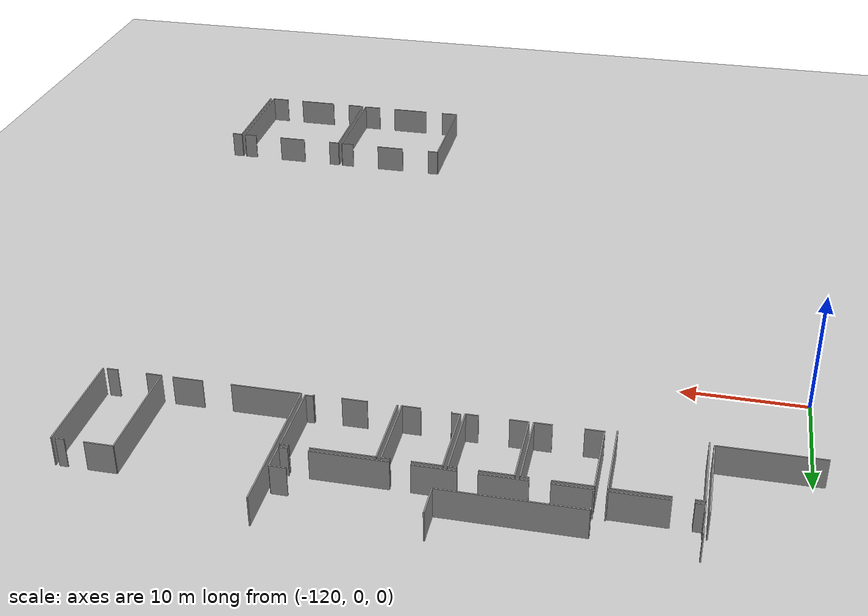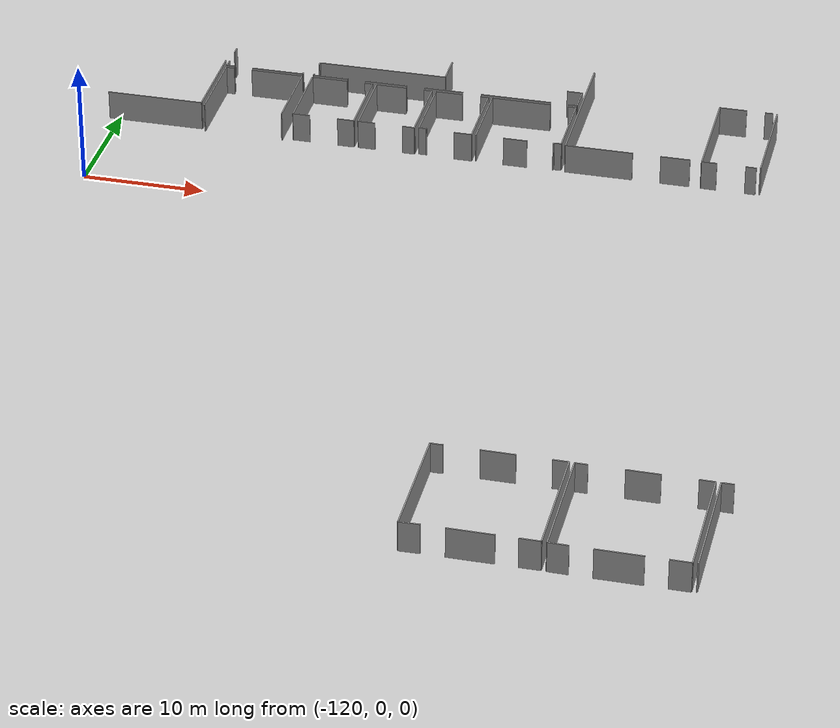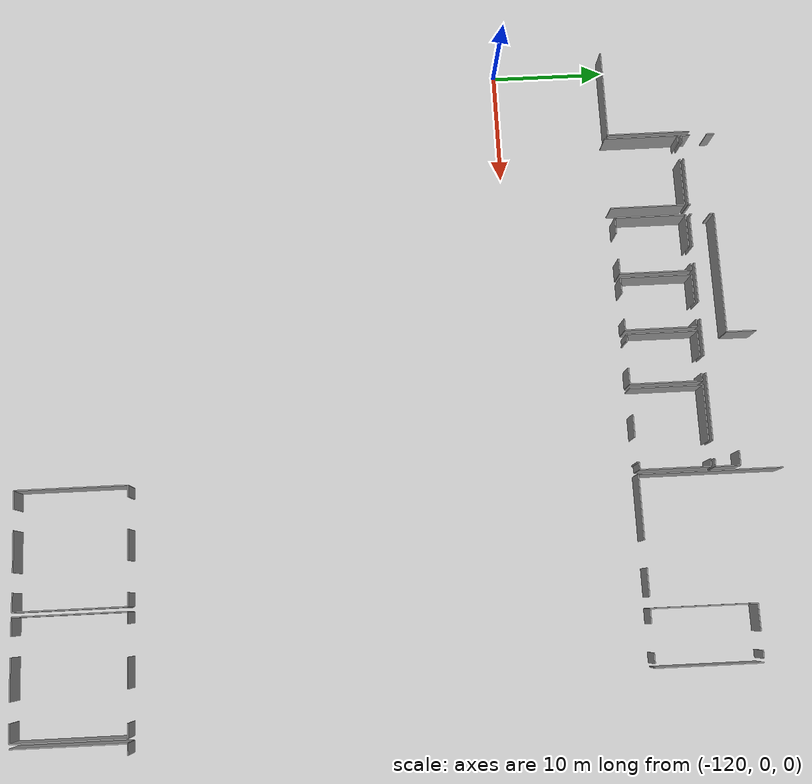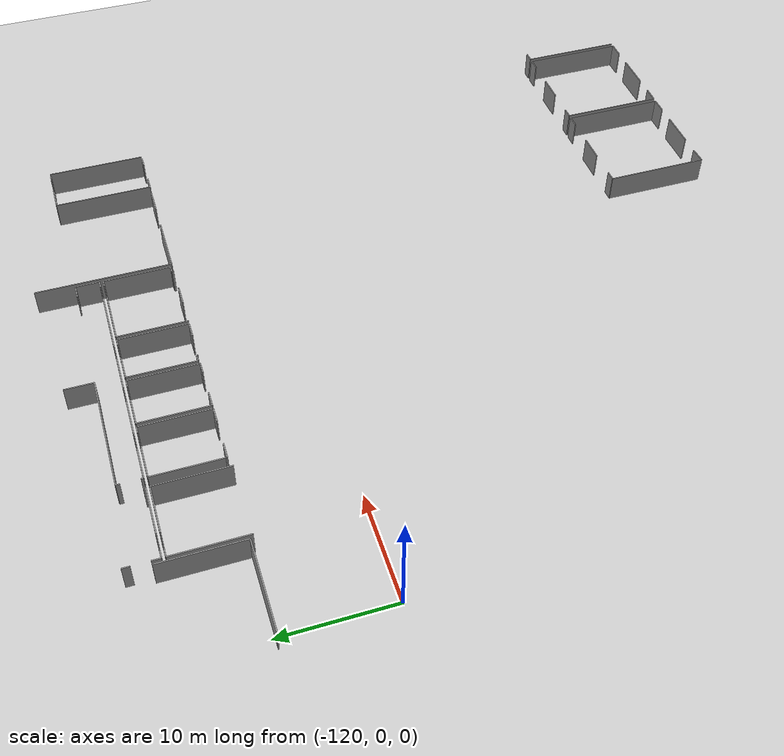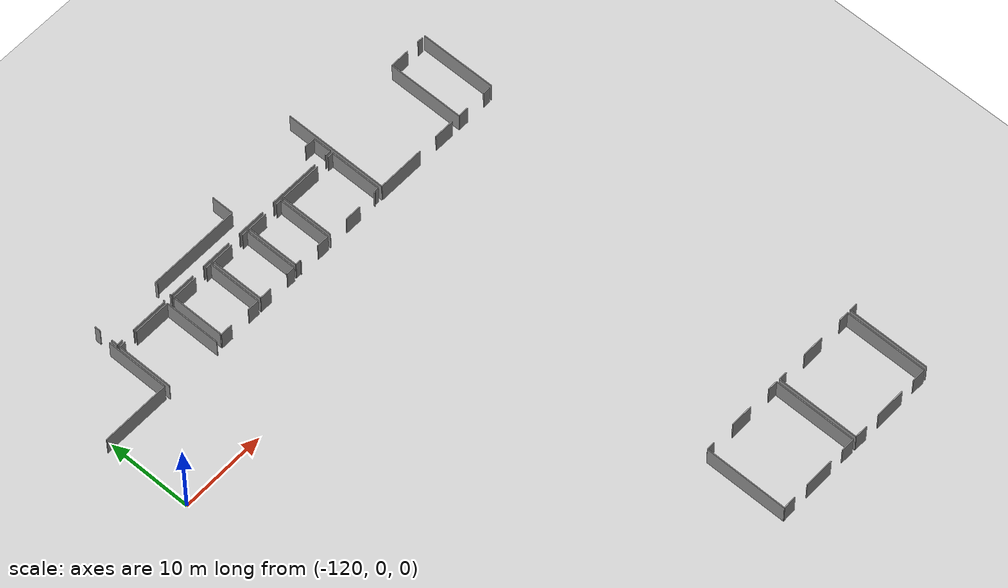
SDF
<sdf version="1.6">
 <world name="default">
  <model name="ground_plane">
   <static>1</static>
   <link name="link">
    <collision name="collision">
     <geometry><plane><normal>0 0 1</normal><size>100 100</size></plane></geometry>
     <surface><friction><ode><mu>100</mu><mu2>50</mu2></ode></friction></surface>
    </collision>
    <visual name="visual">
     <cast_shadows>0</cast_shadows>
     <geometry><plane><normal>0 0 1</normal><size>100 100</size></plane></geometry>
     <material>
      <script><uri>file://media/materials/scripts/gazebo.material</uri><name>Gazebo/Grey</name></script>
     </material>
    </visual>
   </link>
  </model>
  <model name="0510045922_A-40">
   <static>1</static>
   <link name="Wall_533">
    <collision name="Wall_533_Collision">
     <geometry><box><size>7.36938425367 0.1 2.5</size></box></geometry>
     <pose>3.68469212683 0 1.25 0 0 0</pose>
    </collision>
    <visual name="Wall_533_Visual">
     <pose>3.68469212683 0 1.25 0 0 0</pose>
     <geometry><box><size>7.36938425367 0.1 2.5</size></box></geometry>
     <material>
      <script><uri>file://media/materials/scripts/gazebo.material</uri><name>Gazebo/Grey</name></script>
      <ambient>1 1 1 1</ambient>
     </material>
    </visual>
    <pose>21.2833958188 -84.1925144564 0 0 0 -1.57079632679</pose>
   </link>
   <link name="Wall_534">
    <collision name="Wall_534_Collision">
     <geometry><box><size>8.01728410752 0.1 2.5</size></box></geometry>
     <pose>4.00864205376 0 1.25 0 0 0</pose>
    </collision>
    <visual name="Wall_534_Visual">
     <pose>4.00864205376 0 1.25 0 0 0</pose>
     <geometry><box><size>8.01728410752 0.1 2.5</size></box></geometry>
     <material>
      <script><uri>file://media/materials/scripts/gazebo.material</uri><name>Gazebo/Grey</name></script>
      <ambient>1 1 1 1</ambient>
     </material>
    </visual>
    <pose>21.2833958188 -91.56189871 0 0 0 3.14159265359</pose>
   </link>
   <link name="Wall_536">
    <collision name="Wall_536_Collision">
     <geometry><box><size>6.59541208617 0.1 2.5</size></box></geometry>
     <pose>3.29770604308 0 1.25 0 0 0</pose>
    </collision>
    <visual name="Wall_536_Visual">
     <pose>3.29770604308 0 1.25 0 0 0</pose>
     <geometry><box><size>6.59541208617 0.1 2.5</size></box></geometry>
     <material>
      <script><uri>file://media/materials/scripts/gazebo.material</uri><name>Gazebo/Grey</name></script>
      <ambient>1 1 1 1</ambient>
     </material>
    </visual>
    <pose>28.2310986846 -91.8765711381 0 0 0 1.57079632679</pose>
   </link>
   <link name="Wall_537">
    <collision name="Wall_537_Collision">
     <geometry><box><size>4.36449132617 0.1 2.5</size></box></geometry>
     <pose>2.18224566309 0 1.25 0 0 0</pose>
    </collision>
    <visual name="Wall_537_Visual">
     <pose>2.18224566309 0 1.25 0 0 0</pose>
     <geometry><box><size>4.36449132617 0.1 2.5</size></box></geometry>
     <material>
      <script><uri>file://media/materials/scripts/gazebo.material</uri><name>Gazebo/Grey</name></script>
      <ambient>1 1 1 1</ambient>
     </material>
    </visual>
    <pose>28.2310986846 -85.2811590519 0 0 0 3.14159265359</pose>
   </link>
   <link name="Wall_538">
    <collision name="Wall_538_Collision">
     <geometry><box><size>0.707885874055 0.1 2.5</size></box></geometry>
     <pose>0.353942937027 0 1.25 0 0 0</pose>
    </collision>
    <visual name="Wall_538_Visual">
     <pose>0.353942937027 0 1.25 0 0 0</pose>
     <geometry><box><size>0.707885874055 0.1 2.5</size></box></geometry>
     <material>
      <script><uri>file://media/materials/scripts/gazebo.material</uri><name>Gazebo/Grey</name></script>
      <ambient>1 1 1 1</ambient>
     </material>
    </visual>
    <pose>22.3356929529 -85.2811590519 0 0 0 3.14159265359</pose>
   </link>
   <link name="Wall_539">
    <collision name="Wall_539_Collision">
     <geometry><box><size>6.59541953577 0.1 2.5</size></box></geometry>
     <pose>3.29770976788 0 1.25 0 0 0</pose>
    </collision>
    <visual name="Wall_539_Visual">
     <pose>3.29770976788 0 1.25 0 0 0</pose>
     <geometry><box><size>6.59541953577 0.1 2.5</size></box></geometry>
     <material>
      <script><uri>file://media/materials/scripts/gazebo.material</uri><name>Gazebo/Grey</name></script>
      <ambient>1 1 1 1</ambient>
     </material>
    </visual>
    <pose>21.6278070789 -85.2811590519 0 0 0 -1.56929332191</pose>
   </link>
   <link name="Wall_554">
    <collision name="Wall_554_Collision">
     <geometry><box><size>0.769651140624 0.1 2.5</size></box></geometry>
     <pose>0.384825570312 0 1.25 0 0 0</pose>
    </collision>
    <visual name="Wall_554_Visual">
     <pose>0.384825570312 0 1.25 0 0 0</pose>
     <geometry><box><size>0.769651140624 0.1 2.5</size></box></geometry>
     <material>
      <script><uri>file://media/materials/scripts/gazebo.material</uri><name>Gazebo/Grey</name></script>
      <ambient>1 1 1 1</ambient>
     </material>
    </visual>
    <pose>21.6184024909 -84.9486941603 0 0 0 1.57079632679</pose>
   </link>
   <link name="Wall_555">
    <collision name="Wall_555_Collision">
     <geometry><box><size>0.682976424986 0.1 2.5</size></box></geometry>
     <pose>0.341488212493 0 1.25 0 0 0</pose>
    </collision>
    <visual name="Wall_555_Visual">
     <pose>0.341488212493 0 1.25 0 0 0</pose>
     <geometry><box><size>0.682976424986 0.1 2.5</size></box></geometry>
     <material>
      <script><uri>file://media/materials/scripts/gazebo.material</uri><name>Gazebo/Grey</name></script>
      <ambient>1 1 1 1</ambient>
     </material>
    </visual>
    <pose>21.6184024909 -82.6407574506 0 0 0 1.57079632679</pose>
   </link>
   <link name="Wall_559">
    <collision name="Wall_559_Collision">
     <geometry><box><size>0.188345936328 0.1 2.5</size></box></geometry>
     <pose>0.0941729681642 0 1.25 0 0 0</pose>
    </collision>
    <visual name="Wall_559_Visual">
     <pose>0.0941729681642 0 1.25 0 0 0</pose>
     <geometry><box><size>0.188345936328 0.1 2.5</size></box></geometry>
     <material>
      <script><uri>file://media/materials/scripts/gazebo.material</uri><name>Gazebo/Grey</name></script>
      <ambient>1 1 1 1</ambient>
     </material>
    </visual>
    <pose>28.2168647137 -84.7626358264 0 0 0 -1.57079632679</pose>
   </link>
   <link name="Wall_560">
    <collision name="Wall_560_Collision">
     <geometry><box><size>4.36754146279 0.1 2.5</size></box></geometry>
     <pose>2.1837707314 0 1.25 0 0 0</pose>
    </collision>
    <visual name="Wall_560_Visual">
     <pose>2.1837707314 0 1.25 0 0 0</pose>
     <geometry><box><size>4.36754146279 0.1 2.5</size></box></geometry>
     <material>
      <script><uri>file://media/materials/scripts/gazebo.material</uri><name>Gazebo/Grey</name></script>
      <ambient>1 1 1 1</ambient>
     </material>
    </visual>
    <pose>28.2168647137 -84.9509817627 0 0 0 3.14159265359</pose>
   </link>
   <link name="Wall_561">
    <collision name="Wall_561_Collision">
     <geometry><box><size>0.682726079466 0.1 2.5</size></box></geometry>
     <pose>0.341363039733 0 1.25 0 0 0</pose>
    </collision>
    <visual name="Wall_561_Visual">
     <pose>0.341363039733 0 1.25 0 0 0</pose>
     <geometry><box><size>0.682726079466 0.1 2.5</size></box></geometry>
     <material>
      <script><uri>file://media/materials/scripts/gazebo.material</uri><name>Gazebo/Grey</name></script>
      <ambient>1 1 1 1</ambient>
     </material>
    </visual>
    <pose>22.3011247379 -84.9509817627 0 0 0 3.13824195876</pose>
   </link>
   <link name="Wall_562">
    <collision name="Wall_562_Collision">
     <geometry><box><size>6.16432611044 0.1 2.5</size></box></geometry>
     <pose>3.08216305522 0 1.25 0 0 0</pose>
    </collision>
    <visual name="Wall_562_Visual">
     <pose>3.08216305522 0 1.25 0 0 0</pose>
     <geometry><box><size>6.16432611044 0.1 2.5</size></box></geometry>
     <material>
      <script><uri>file://media/materials/scripts/gazebo.material</uri><name>Gazebo/Grey</name></script>
      <ambient>1 1 1 1</ambient>
     </material>
    </visual>
    <pose>29.1504606977 -91.4490436551 0 0 0 1.57079632679</pose>
   </link>
   <link name="Wall_563">
    <collision name="Wall_563_Collision">
     <geometry><box><size>2.99828429815 0.1 2.5</size></box></geometry>
     <pose>1.49914214908 0 1.25 0 0 0</pose>
    </collision>
    <visual name="Wall_563_Visual">
     <pose>1.49914214908 0 1.25 0 0 0</pose>
     <geometry><box><size>2.99828429815 0.1 2.5</size></box></geometry>
     <material>
      <script><uri>file://media/materials/scripts/gazebo.material</uri><name>Gazebo/Grey</name></script>
      <ambient>1 1 1 1</ambient>
     </material>
    </visual>
    <pose>29.1504606977 -85.2847175446 0 0 0 0.0</pose>
   </link>
   <link name="Wall_564">
    <collision name="Wall_564_Collision">
     <geometry><box><size>0.644341361123 0.1 2.5</size></box></geometry>
     <pose>0.322170680562 0 1.25 0 0 0</pose>
    </collision>
    <visual name="Wall_564_Visual">
     <pose>0.322170680562 0 1.25 0 0 0</pose>
     <geometry><box><size>0.644341361123 0.1 2.5</size></box></geometry>
     <material>
      <script><uri>file://media/materials/scripts/gazebo.material</uri><name>Gazebo/Grey</name></script>
      <ambient>1 1 1 1</ambient>
     </material>
    </visual>
    <pose>33.6697464574 -85.2847175446 0 0 0 0.0</pose>
   </link>
   <link name="Wall_565">
    <collision name="Wall_565_Collision">
     <geometry><box><size>6.30081972422 0.1 2.5</size></box></geometry>
     <pose>3.15040986211 0 1.25 0 0 0</pose>
    </collision>
    <visual name="Wall_565_Visual">
     <pose>3.15040986211 0 1.25 0 0 0</pose>
     <geometry><box><size>6.30081972422 0.1 2.5</size></box></geometry>
     <material>
      <script><uri>file://media/materials/scripts/gazebo.material</uri><name>Gazebo/Grey</name></script>
      <ambient>1 1 1 1</ambient>
     </material>
    </visual>
    <pose>34.3140878185 -85.2847175446 0 0 0 -1.57079632679</pose>
   </link>
   <link name="Wall_566">
    <collision name="Wall_566_Collision">
     <geometry><box><size>1.38908305268 0.1 2.5</size></box></geometry>
     <pose>0.694541526339 0 1.25 0 0 0</pose>
    </collision>
    <visual name="Wall_566_Visual">
     <pose>0.694541526339 0 1.25 0 0 0</pose>
     <geometry><box><size>1.38908305268 0.1 2.5</size></box></geometry>
     <material>
      <script><uri>file://media/materials/scripts/gazebo.material</uri><name>Gazebo/Grey</name></script>
      <ambient>1 1 1 1</ambient>
     </material>
    </visual>
    <pose>34.3140878185 -91.5855372689 0 0 0 3.14159265359</pose>
   </link>
   <link name="Wall_567">
    <collision name="Wall_567_Collision">
     <geometry><box><size>1.43356421173 0.1 2.5</size></box></geometry>
     <pose>0.716782105865 0 1.25 0 0 0</pose>
    </collision>
    <visual name="Wall_567_Visual">
     <pose>0.716782105865 0 1.25 0 0 0</pose>
     <geometry><box><size>1.43356421173 0.1 2.5</size></box></geometry>
     <material>
      <script><uri>file://media/materials/scripts/gazebo.material</uri><name>Gazebo/Grey</name></script>
      <ambient>1 1 1 1</ambient>
     </material>
    </visual>
    <pose>30.5797038826 -91.5855372689 0 0 0 3.14159265359</pose>
   </link>
   <link name="Wall_568">
    <collision name="Wall_568_Collision">
     <geometry><box><size>0.136561992791 0.1 2.5</size></box></geometry>
     <pose>0.0682809963955 0 1.25 0 0 0</pose>
    </collision>
    <visual name="Wall_568_Visual">
     <pose>0.0682809963955 0 1.25 0 0 0</pose>
     <geometry><box><size>0.136561992791 0.1 2.5</size></box></geometry>
     <material>
      <script><uri>file://media/materials/scripts/gazebo.material</uri><name>Gazebo/Grey</name></script>
      <ambient>1 1 1 1</ambient>
     </material>
    </visual>
    <pose>29.1461396708 -91.5855372689 0 0 0 1.5391495403</pose>
   </link>
   <link name="Wall_569">
    <collision name="Wall_569_Collision">
     <geometry><box><size>6.27311431658 0.1 2.5</size></box></geometry>
     <pose>3.13655715829 0 1.25 0 0 0</pose>
    </collision>
    <visual name="Wall_569_Visual">
     <pose>3.13655715829 0 1.25 0 0 0</pose>
     <geometry><box><size>6.27311431658 0.1 2.5</size></box></geometry>
     <material>
      <script><uri>file://media/materials/scripts/gazebo.material</uri><name>Gazebo/Grey</name></script>
      <ambient>1 1 1 1</ambient>
     </material>
    </visual>
    <pose>34.680104213 -91.5733367224 0 0 0 1.57079632679</pose>
   </link>
   <link name="Wall_570">
    <collision name="Wall_570_Collision">
     <geometry><box><size>2.55398106374 0.1 2.5</size></box></geometry>
     <pose>1.27699053187 0 1.25 0 0 0</pose>
    </collision>
    <visual name="Wall_570_Visual">
     <pose>1.27699053187 0 1.25 0 0 0</pose>
     <geometry><box><size>2.55398106374 0.1 2.5</size></box></geometry>
     <material>
      <script><uri>file://media/materials/scripts/gazebo.material</uri><name>Gazebo/Grey</name></script>
      <ambient>1 1 1 1</ambient>
     </material>
    </visual>
    <pose>34.680104213 -85.3002224058 0 0 0 0.0</pose>
   </link>
   <link name="Wall_571">
    <collision name="Wall_571_Collision">
     <geometry><box><size>0.666454851624 0.1 2.5</size></box></geometry>
     <pose>0.333227425812 0 1.25 0 0 0</pose>
    </collision>
    <visual name="Wall_571_Visual">
     <pose>0.333227425812 0 1.25 0 0 0</pose>
     <geometry><box><size>0.666454851624 0.1 2.5</size></box></geometry>
     <material>
      <script><uri>file://media/materials/scripts/gazebo.material</uri><name>Gazebo/Grey</name></script>
      <ambient>1 1 1 1</ambient>
     </material>
    </visual>
    <pose>38.7558492724 -85.3002224058 0 0 0 0.0</pose>
   </link>
   <link name="Wall_572">
    <collision name="Wall_572_Collision">
     <geometry><box><size>6.26625150918 0.1 2.5</size></box></geometry>
     <pose>3.13312575459 0 1.25 0 0 0</pose>
    </collision>
    <visual name="Wall_572_Visual">
     <pose>3.13312575459 0 1.25 0 0 0</pose>
     <geometry><box><size>6.26625150918 0.1 2.5</size></box></geometry>
     <material>
      <script><uri>file://media/materials/scripts/gazebo.material</uri><name>Gazebo/Grey</name></script>
      <ambient>1 1 1 1</ambient>
     </material>
    </visual>
    <pose>39.422304124 -85.3002224058 0 0 0 -1.57079632679</pose>
   </link>
   <link name="Wall_573">
    <collision name="Wall_573_Collision">
     <geometry><box><size>1.00527419457 0.1 2.5</size></box></geometry>
     <pose>0.502637097287 0 1.25 0 0 0</pose>
    </collision>
    <visual name="Wall_573_Visual">
     <pose>0.502637097287 0 1.25 0 0 0</pose>
     <geometry><box><size>1.00527419457 0.1 2.5</size></box></geometry>
     <material>
      <script><uri>file://media/materials/scripts/gazebo.material</uri><name>Gazebo/Grey</name></script>
      <ambient>1 1 1 1</ambient>
     </material>
    </visual>
    <pose>39.422304124 -91.566473915 0 0 0 3.14159265359</pose>
   </link>
   <link name="Wall_574">
    <collision name="Wall_574_Collision">
     <geometry><box><size>1.42595538486 0.1 2.5</size></box></geometry>
     <pose>0.71297769243 0 1.25 0 0 0</pose>
    </collision>
    <visual name="Wall_574_Visual">
     <pose>0.71297769243 0 1.25 0 0 0</pose>
     <geometry><box><size>1.42595538486 0.1 2.5</size></box></geometry>
     <material>
      <script><uri>file://media/materials/scripts/gazebo.material</uri><name>Gazebo/Grey</name></script>
      <ambient>1 1 1 1</ambient>
     </material>
    </visual>
    <pose>36.1060430832 -91.566473915 0 0 0 -3.13677985653</pose>
   </link>
   <link name="Wall_575">
    <collision name="Wall_575_Collision">
     <geometry><box><size>6.15542987863 0.1 2.5</size></box></geometry>
     <pose>3.07771493931 0 1.25 0 0 0</pose>
    </collision>
    <visual name="Wall_575_Visual">
     <pose>3.07771493931 0 1.25 0 0 0</pose>
     <geometry><box><size>6.15542987863 0.1 2.5</size></box></geometry>
     <material>
      <script><uri>file://media/materials/scripts/gazebo.material</uri><name>Gazebo/Grey</name></script>
      <ambient>1 1 1 1</ambient>
     </material>
    </visual>
    <pose>39.780949355 -91.4653110504 0 0 0 1.57079632679</pose>
   </link>
   <link name="Wall_576">
    <collision name="Wall_576_Collision">
     <geometry><box><size>2.27997712398 0.1 2.5</size></box></geometry>
     <pose>1.13998856199 0 1.25 0 0 0</pose>
    </collision>
    <visual name="Wall_576_Visual">
     <pose>1.13998856199 0 1.25 0 0 0</pose>
     <geometry><box><size>2.27997712398 0.1 2.5</size></box></geometry>
     <material>
      <script><uri>file://media/materials/scripts/gazebo.material</uri><name>Gazebo/Grey</name></script>
      <ambient>1 1 1 1</ambient>
     </material>
    </visual>
    <pose>39.780949355 -85.3098811718 0 0 0 0.0</pose>
   </link>
   <link name="Wall_577">
    <collision name="Wall_577_Collision">
     <geometry><box><size>0.666454851624 0.1 2.5</size></box></geometry>
     <pose>0.333227425812 0 1.25 0 0 0</pose>
    </collision>
    <visual name="Wall_577_Visual">
     <pose>0.333227425812 0 1.25 0 0 0</pose>
     <geometry><box><size>0.666454851624 0.1 2.5</size></box></geometry>
     <material>
      <script><uri>file://media/materials/scripts/gazebo.material</uri><name>Gazebo/Grey</name></script>
      <ambient>1 1 1 1</ambient>
     </material>
    </visual>
    <pose>43.5636271208 -85.3098811718 0 0 0 0.0</pose>
   </link>
   <link name="Wall_578">
    <collision name="Wall_578_Collision">
     <geometry><box><size>6.27438520684 0.1 2.5</size></box></geometry>
     <pose>3.13719260342 0 1.25 0 0 0</pose>
    </collision>
    <visual name="Wall_578_Visual">
     <pose>3.13719260342 0 1.25 0 0 0</pose>
     <geometry><box><size>6.27438520684 0.1 2.5</size></box></geometry>
     <material>
      <script><uri>file://media/materials/scripts/gazebo.material</uri><name>Gazebo/Grey</name></script>
      <ambient>1 1 1 1</ambient>
     </material>
    </visual>
    <pose>44.2300819724 -85.3098811718 0 0 0 -1.57079632679</pose>
   </link>
   <link name="Wall_579">
    <collision name="Wall_579_Collision">
     <geometry><box><size>1.45872783885 0.1 2.5</size></box></geometry>
     <pose>0.729363919426 0 1.25 0 0 0</pose>
    </collision>
    <visual name="Wall_579_Visual">
     <pose>0.729363919426 0 1.25 0 0 0</pose>
     <geometry><box><size>1.45872783885 0.1 2.5</size></box></geometry>
     <material>
      <script><uri>file://media/materials/scripts/gazebo.material</uri><name>Gazebo/Grey</name></script>
      <ambient>1 1 1 1</ambient>
     </material>
    </visual>
    <pose>44.2300819724 -91.5842663786 0 0 0 3.14159265359</pose>
   </link>
   <link name="Wall_580">
    <collision name="Wall_580_Collision">
     <geometry><box><size>0.124293067294 0.1 2.5</size></box></geometry>
     <pose>0.0621465336468 0 1.25 0 0 0</pose>
    </collision>
    <visual name="Wall_580_Visual">
     <pose>0.0621465336468 0 1.25 0 0 0</pose>
     <geometry><box><size>0.124293067294 0.1 2.5</size></box></geometry>
     <material>
      <script><uri>file://media/materials/scripts/gazebo.material</uri><name>Gazebo/Grey</name></script>
      <ambient>1 1 1 1</ambient>
     </material>
    </visual>
    <pose>40.414615238 -91.5842663786 0 0 0 1.57079632679</pose>
   </link>
   <link name="Wall_581">
    <collision name="Wall_581_Collision">
     <geometry><box><size>0.633688364004 0.1 2.5</size></box></geometry>
     <pose>0.316844182002 0 1.25 0 0 0</pose>
    </collision>
    <visual name="Wall_581_Visual">
     <pose>0.316844182002 0 1.25 0 0 0</pose>
     <geometry><box><size>0.633688364004 0.1 2.5</size></box></geometry>
     <material>
      <script><uri>file://media/materials/scripts/gazebo.material</uri><name>Gazebo/Grey</name></script>
      <ambient>1 1 1 1</ambient>
     </material>
    </visual>
    <pose>40.414615238 -91.4599733113 0 0 0 -3.13316926678</pose>
   </link>
   <link name="Wall_582">
    <collision name="Wall_582_Collision">
     <geometry><box><size>6.30793670967 0.1 2.5</size></box></geometry>
     <pose>3.15396835483 0 1.25 0 0 0</pose>
    </collision>
    <visual name="Wall_582_Visual">
     <pose>3.15396835483 0 1.25 0 0 0</pose>
     <geometry><box><size>6.30793670967 0.1 2.5</size></box></geometry>
     <material>
      <script><uri>file://media/materials/scripts/gazebo.material</uri><name>Gazebo/Grey</name></script>
      <ambient>1 1 1 1</ambient>
     </material>
    </visual>
    <pose>44.5800851496 -91.6094300057 0 0 0 1.57079632679</pose>
   </link>
   <link name="Wall_583">
    <collision name="Wall_583_Collision">
     <geometry><box><size>4.91173667154 0.1 2.5</size></box></geometry>
     <pose>2.45586833577 0 1.25 0 0 0</pose>
    </collision>
    <visual name="Wall_583_Visual">
     <pose>2.45586833577 0 1.25 0 0 0</pose>
     <geometry><box><size>4.91173667154 0.1 2.5</size></box></geometry>
     <material>
      <script><uri>file://media/materials/scripts/gazebo.material</uri><name>Gazebo/Grey</name></script>
      <ambient>1 1 1 1</ambient>
     </material>
    </visual>
    <pose>44.5800851496 -85.3014932961 0 0 0 0.0</pose>
   </link>
   <link name="Wall_584">
    <collision name="Wall_584_Collision">
     <geometry><box><size>0.652983414882 0.1 2.5</size></box></geometry>
     <pose>0.326491707441 0 1.25 0 0 0</pose>
    </collision>
    <visual name="Wall_584_Visual">
     <pose>0.326491707441 0 1.25 0 0 0</pose>
     <geometry><box><size>0.652983414882 0.1 2.5</size></box></geometry>
     <material>
      <script><uri>file://media/materials/scripts/gazebo.material</uri><name>Gazebo/Grey</name></script>
      <ambient>1 1 1 1</ambient>
     </material>
    </visual>
    <pose>51.0018936265 -85.3014932961 0 0 0 0.0</pose>
   </link>
   <link name="Wall_585">
    <collision name="Wall_585_Collision">
     <geometry><box><size>6.09468132427 0.1 2.5</size></box></geometry>
     <pose>3.04734066213 0 1.25 0 0 0</pose>
    </collision>
    <visual name="Wall_585_Visual">
     <pose>3.04734066213 0 1.25 0 0 0</pose>
     <geometry><box><size>6.09468132427 0.1 2.5</size></box></geometry>
     <material>
      <script><uri>file://media/materials/scripts/gazebo.material</uri><name>Gazebo/Grey</name></script>
      <ambient>1 1 1 1</ambient>
     </material>
    </visual>
    <pose>51.6548770414 -85.3014932961 0 0 0 -1.57079632679</pose>
   </link>
   <link name="Wall_586">
    <collision name="Wall_586_Collision">
     <geometry><box><size>0.626294719451 0.1 2.5</size></box></geometry>
     <pose>0.313147359725 0 1.25 0 0 0</pose>
    </collision>
    <visual name="Wall_586_Visual">
     <pose>0.313147359725 0 1.25 0 0 0</pose>
     <geometry><box><size>0.626294719451 0.1 2.5</size></box></geometry>
     <material>
      <script><uri>file://media/materials/scripts/gazebo.material</uri><name>Gazebo/Grey</name></script>
      <ambient>1 1 1 1</ambient>
     </material>
    </visual>
    <pose>51.6548770414 -91.3961746203 0 0 0 3.14159265359</pose>
   </link>
   <link name="Wall_587">
    <collision name="Wall_587_Collision">
     <geometry><box><size>0.173349431277 0.1 2.5</size></box></geometry>
     <pose>0.0866747156383 0 1.25 0 0 0</pose>
    </collision>
    <visual name="Wall_587_Visual">
     <pose>0.0866747156383 0 1.25 0 0 0</pose>
     <geometry><box><size>0.173349431277 0.1 2.5</size></box></geometry>
     <material>
      <script><uri>file://media/materials/scripts/gazebo.material</uri><name>Gazebo/Grey</name></script>
      <ambient>1 1 1 1</ambient>
     </material>
    </visual>
    <pose>51.0285823219 -91.3961746203 0 0 0 -1.57079632679</pose>
   </link>
   <link name="Wall_588">
    <collision name="Wall_588_Collision">
     <geometry><box><size>1.97369257165 0.1 2.5</size></box></geometry>
     <pose>0.986846285823 0 1.25 0 0 0</pose>
    </collision>
    <visual name="Wall_588_Visual">
     <pose>0.986846285823 0 1.25 0 0 0</pose>
     <geometry><box><size>1.97369257165 0.1 2.5</size></box></geometry>
     <material>
      <script><uri>file://media/materials/scripts/gazebo.material</uri><name>Gazebo/Grey</name></script>
      <ambient>1 1 1 1</ambient>
     </material>
    </visual>
    <pose>48.8474804601 -91.5695240516 0 0 0 3.14159265359</pose>
   </link>
   <link name="Wall_589">
    <collision name="Wall_589_Collision">
     <geometry><box><size>10.8409480841 0.1 2.5</size></box></geometry>
     <pose>5.42047404207 0 1.25 0 0 0</pose>
    </collision>
    <visual name="Wall_589_Visual">
     <pose>5.42047404207 0 1.25 0 0 0</pose>
     <geometry><box><size>10.8409480841 0.1 2.5</size></box></geometry>
     <material>
      <script><uri>file://media/materials/scripts/gazebo.material</uri><name>Gazebo/Grey</name></script>
      <ambient>1 1 1 1</ambient>
     </material>
    </visual>
    <pose>29.1494439855 -82.7708966131 0 0 0 0.0</pose>
   </link>
   <link name="Wall_590">
    <collision name="Wall_590_Collision">
     <geometry><box><size>2.59490373006 0.1 2.5</size></box></geometry>
     <pose>1.29745186503 0 1.25 0 0 0</pose>
    </collision>
    <visual name="Wall_590_Visual">
     <pose>1.29745186503 0 1.25 0 0 0</pose>
     <geometry><box><size>2.59490373006 0.1 2.5</size></box></geometry>
     <material>
      <script><uri>file://media/materials/scripts/gazebo.material</uri><name>Gazebo/Grey</name></script>
      <ambient>1 1 1 1</ambient>
     </material>
    </visual>
    <pose>39.9903920696 -82.7708966131 0 0 0 1.57079632679</pose>
   </link>
   <link name="Wall_596">
    <collision name="Wall_596_Collision">
     <geometry><box><size>1.26834847811 0.1 2.5</size></box></geometry>
     <pose>0.634174239054 0 1.25 0 0 0</pose>
    </collision>
    <visual name="Wall_596_Visual">
     <pose>0.634174239054 0 1.25 0 0 0</pose>
     <geometry><box><size>1.26834847811 0.1 2.5</size></box></geometry>
     <material>
      <script><uri>file://media/materials/scripts/gazebo.material</uri><name>Gazebo/Grey</name></script>
      <ambient>1 1 1 1</ambient>
     </material>
    </visual>
    <pose>50.4127089026 -82.8095316769 0 0 0 0.0</pose>
   </link>
   <link name="Wall_597">
    <collision name="Wall_597_Collision">
     <geometry><box><size>2.14322933215 0.1 2.5</size></box></geometry>
     <pose>1.07161466607 0 1.25 0 0 0</pose>
    </collision>
    <visual name="Wall_597_Visual">
     <pose>1.07161466607 0 1.25 0 0 0</pose>
     <geometry><box><size>2.14322933215 0.1 2.5</size></box></geometry>
     <material>
      <script><uri>file://media/materials/scripts/gazebo.material</uri><name>Gazebo/Grey</name></script>
      <ambient>1 1 1 1</ambient>
     </material>
    </visual>
    <pose>51.6810573807 -82.8095316769 0 0 0 -1.57079632679</pose>
   </link>
   <link name="Wall_598">
    <collision name="Wall_598_Collision">
     <geometry><box><size>0.6923810129 0.1 2.5</size></box></geometry>
     <pose>0.34619050645 0 1.25 0 0 0</pose>
    </collision>
    <visual name="Wall_598_Visual">
     <pose>0.34619050645 0 1.25 0 0 0</pose>
     <geometry><box><size>0.6923810129 0.1 2.5</size></box></geometry>
     <material>
      <script><uri>file://media/materials/scripts/gazebo.material</uri><name>Gazebo/Grey</name></script>
      <ambient>1 1 1 1</ambient>
     </material>
    </visual>
    <pose>51.6810573807 -84.9527610091 0 0 0 3.14159265359</pose>
   </link>
   <link name="Wall_599">
    <collision name="Wall_599_Collision">
     <geometry><box><size>5.93632839804 0.1 2.5</size></box></geometry>
     <pose>2.96816419902 0 1.25 0 0 0</pose>
    </collision>
    <visual name="Wall_599_Visual">
     <pose>2.96816419902 0 1.25 0 0 0</pose>
     <geometry><box><size>5.93632839804 0.1 2.5</size></box></geometry>
     <material>
      <script><uri>file://media/materials/scripts/gazebo.material</uri><name>Gazebo/Grey</name></script>
      <ambient>1 1 1 1</ambient>
     </material>
    </visual>
    <pose>49.4745377137 -84.9527610091 0 0 0 3.14159265359</pose>
   </link>
   <link name="Wall_600">
    <collision name="Wall_600_Collision">
     <geometry><box><size>3.30914405541 0.1 2.5</size></box></geometry>
     <pose>1.65457202771 0 1.25 0 0 0</pose>
    </collision>
    <visual name="Wall_600_Visual">
     <pose>1.65457202771 0 1.25 0 0 0</pose>
     <geometry><box><size>3.30914405541 0.1 2.5</size></box></geometry>
     <material>
      <script><uri>file://media/materials/scripts/gazebo.material</uri><name>Gazebo/Grey</name></script>
      <ambient>1 1 1 1</ambient>
     </material>
    </visual>
    <pose>42.0128868272 -84.9527610091 0 0 0 3.14159265359</pose>
   </link>
   <link name="Wall_601">
    <collision name="Wall_601_Collision">
     <geometry><box><size>3.58950244646 0.1 2.5</size></box></geometry>
     <pose>1.79475122323 0 1.25 0 0 0</pose>
    </collision>
    <visual name="Wall_601_Visual">
     <pose>1.79475122323 0 1.25 0 0 0</pose>
     <geometry><box><size>3.58950244646 0.1 2.5</size></box></geometry>
     <material>
      <script><uri>file://media/materials/scripts/gazebo.material</uri><name>Gazebo/Grey</name></script>
      <ambient>1 1 1 1</ambient>
     </material>
    </visual>
    <pose>37.2101925399 -84.9527610091 0 0 0 3.14159265359</pose>
   </link>
   <link name="Wall_602">
    <collision name="Wall_602_Collision">
     <geometry><box><size>2.97108724662 0.1 2.5</size></box></geometry>
     <pose>1.48554362331 0 1.25 0 0 0</pose>
    </collision>
    <visual name="Wall_602_Visual">
     <pose>1.48554362331 0 1.25 0 0 0</pose>
     <geometry><box><size>2.97108724662 0.1 2.5</size></box></geometry>
     <material>
      <script><uri>file://media/materials/scripts/gazebo.material</uri><name>Gazebo/Grey</name></script>
      <ambient>1 1 1 1</ambient>
     </material>
    </visual>
    <pose>32.1223104785 -84.9527610091 0 0 0 3.14159265359</pose>
   </link>
   <link name="Wall_603">
    <collision name="Wall_603_Collision">
     <geometry><box><size>0.203088263328 0.1 2.5</size></box></geometry>
     <pose>0.101544131664 0 1.25 0 0 0</pose>
    </collision>
    <visual name="Wall_603_Visual">
     <pose>0.101544131664 0 1.25 0 0 0</pose>
     <geometry><box><size>0.203088263328 0.1 2.5</size></box></geometry>
     <material>
      <script><uri>file://media/materials/scripts/gazebo.material</uri><name>Gazebo/Grey</name></script>
      <ambient>1 1 1 1</ambient>
     </material>
    </visual>
    <pose>29.1512232319 -84.9527610091 0 0 0 1.57079632679</pose>
   </link>
   <link name="Wall_604">
    <collision name="Wall_604_Collision">
     <geometry><box><size>0.344161681239 0.1 2.5</size></box></geometry>
     <pose>0.172080840619 0 1.25 0 0 0</pose>
    </collision>
    <visual name="Wall_604_Visual">
     <pose>0.172080840619 0 1.25 0 0 0</pose>
     <geometry><box><size>0.344161681239 0.1 2.5</size></box></geometry>
     <material>
      <script><uri>file://media/materials/scripts/gazebo.material</uri><name>Gazebo/Grey</name></script>
      <ambient>1 1 1 1</ambient>
     </material>
    </visual>
    <pose>29.1512232319 -83.1150536951 0 0 0 1.5759661478</pose>
   </link>
   <link name="Wall_638">
    <collision name="Wall_638_Collision">
     <geometry><box><size>12.3372942746 0.1 2.5</size></box></geometry>
     <pose>6.16864713732 0 1.25 0 0 0</pose>
    </collision>
    <visual name="Wall_638_Visual">
     <pose>6.16864713732 0 1.25 0 0 0</pose>
     <geometry><box><size>12.3372942746 0.1 2.5</size></box></geometry>
     <material>
      <script><uri>file://media/materials/scripts/gazebo.material</uri><name>Gazebo/Grey</name></script>
      <ambient>1 1 1 1</ambient>
     </material>
    </visual>
    <pose>52.0241977505 -91.5530024782 0 0 0 1.57079632679</pose>
   </link>
   <link name="Wall_652">
    <collision name="Wall_652_Collision">
     <geometry><box><size>2.41367477918 0.1 2.5</size></box></geometry>
     <pose>1.20683738959 0 1.25 0 0 0</pose>
    </collision>
    <visual name="Wall_652_Visual">
     <pose>1.20683738959 0 1.25 0 0 0</pose>
     <geometry><box><size>2.41367477918 0.1 2.5</size></box></geometry>
     <material>
      <script><uri>file://media/materials/scripts/gazebo.material</uri><name>Gazebo/Grey</name></script>
      <ambient>1 1 1 1</ambient>
     </material>
    </visual>
    <pose>62.2810446718 -91.5522399441 0 0 0 3.14159265359</pose>
   </link>
   <link name="Wall_653">
    <collision name="Wall_653_Collision">
     <geometry><box><size>5.55277377035 0.1 2.5</size></box></geometry>
     <pose>2.77638688517 0 1.25 0 0 0</pose>
    </collision>
    <visual name="Wall_653_Visual">
     <pose>2.77638688517 0 1.25 0 0 0</pose>
     <geometry><box><size>5.55277377035 0.1 2.5</size></box></geometry>
     <material>
      <script><uri>file://media/materials/scripts/gazebo.material</uri><name>Gazebo/Grey</name></script>
      <ambient>1 1 1 1</ambient>
     </material>
    </visual>
    <pose>57.5769714685 -91.5522399441 0 0 0 -3.14145532868</pose>
   </link>
   <link name="Wall_665">
    <collision name="Wall_665_Collision">
     <geometry><box><size>8.97578954057 0.1 2.5</size></box></geometry>
     <pose>4.48789477029 0 1.25 0 0 0</pose>
    </collision>
    <visual name="Wall_665_Visual">
     <pose>4.48789477029 0 1.25 0 0 0</pose>
     <geometry><box><size>8.97578954057 0.1 2.5</size></box></geometry>
     <material>
      <script><uri>file://media/materials/scripts/gazebo.material</uri><name>Gazebo/Grey</name></script>
      <ambient>1 1 1 1</ambient>
     </material>
    </visual>
    <pose>63.2278579145 -91.5918917201 0 0 0 1.57079632679</pose>
   </link>
   <link name="Wall_666">
    <collision name="Wall_666_Collision">
     <geometry><box><size>2.26370972866 0.1 2.5</size></box></geometry>
     <pose>1.13185486433 0 1.25 0 0 0</pose>
    </collision>
    <visual name="Wall_666_Visual">
     <pose>1.13185486433 0 1.25 0 0 0</pose>
     <geometry><box><size>2.26370972866 0.1 2.5</size></box></geometry>
     <material>
      <script><uri>file://media/materials/scripts/gazebo.material</uri><name>Gazebo/Grey</name></script>
      <ambient>1 1 1 1</ambient>
     </material>
    </visual>
    <pose>63.2278579145 -82.6161021796 0 0 0 0.0</pose>
   </link>
   <link name="Wall_667">
    <collision name="Wall_667_Collision">
     <geometry><box><size>0.678401220055 0.1 2.5</size></box></geometry>
     <pose>0.339200610027 0 1.25 0 0 0</pose>
    </collision>
    <visual name="Wall_667_Visual">
     <pose>0.339200610027 0 1.25 0 0 0</pose>
     <geometry><box><size>0.678401220055 0.1 2.5</size></box></geometry>
     <material>
      <script><uri>file://media/materials/scripts/gazebo.material</uri><name>Gazebo/Grey</name></script>
      <ambient>1 1 1 1</ambient>
     </material>
    </visual>
    <pose>67.0102815022 -82.6161021796 0 0 0 0.0</pose>
   </link>
   <link name="Wall_669">
    <collision name="Wall_669_Collision">
     <geometry><box><size>0.885810510262 0.1 2.5</size></box></geometry>
     <pose>0.442905255131 0 1.25 0 0 0</pose>
    </collision>
    <visual name="Wall_669_Visual">
     <pose>0.442905255131 0 1.25 0 0 0</pose>
     <geometry><box><size>0.885810510262 0.1 2.5</size></box></geometry>
     <material>
      <script><uri>file://media/materials/scripts/gazebo.material</uri><name>Gazebo/Grey</name></script>
      <ambient>1 1 1 1</ambient>
     </material>
    </visual>
    <pose>67.6886827222 -91.5949418568 0 0 0 3.14159265359</pose>
   </link>
   <link name="Wall_670">
    <collision name="Wall_670_Collision">
     <geometry><box><size>1.24700125205 0.1 2.5</size></box></geometry>
     <pose>0.623500626026 0 1.25 0 0 0</pose>
    </collision>
    <visual name="Wall_670_Visual">
     <pose>0.623500626026 0 1.25 0 0 0</pose>
     <geometry><box><size>1.24700125205 0.1 2.5</size></box></geometry>
     <material>
      <script><uri>file://media/materials/scripts/gazebo.material</uri><name>Gazebo/Grey</name></script>
      <ambient>1 1 1 1</ambient>
     </material>
    </visual>
    <pose>64.4748554362 -91.5949418568 0 0 0 3.13914667396</pose>
   </link>
   <link name="Wall_671">
    <collision name="Wall_671_Collision">
     <geometry><box><size>8.97782296499 0.1 2.5</size></box></geometry>
     <pose>4.48891148249 0 1.25 0 0 0</pose>
    </collision>
    <visual name="Wall_671_Visual">
     <pose>4.48891148249 0 1.25 0 0 0</pose>
     <geometry><box><size>8.97782296499 0.1 2.5</size></box></geometry>
     <material>
      <script><uri>file://media/materials/scripts/gazebo.material</uri><name>Gazebo/Grey</name></script>
      <ambient>1 1 1 1</ambient>
     </material>
    </visual>
    <pose>68.0122513821 -91.591383364 0 0 0 1.57079632679</pose>
   </link>
   <link name="Wall_1030">
    <collision name="Wall_1030_Collision">
     <geometry><box><size>9.65902014361 0.1 2.5</size></box></geometry>
     <pose>4.82951007181 0 1.25 0 0 0</pose>
    </collision>
    <visual name="Wall_1030_Visual">
     <pose>4.82951007181 0 1.25 0 0 0</pose>
     <geometry><box><size>9.65902014361 0.1 2.5</size></box></geometry>
     <material>
      <script><uri>file://media/materials/scripts/gazebo.material</uri><name>Gazebo/Grey</name></script>
      <ambient>1 1 1 1</ambient>
     </material>
    </visual>
    <pose>50.8770922031 -144.492444557 0 0 0 1.57079632679</pose>
   </link>
   <link name="Wall_1031">
    <collision name="Wall_1031_Collision">
     <geometry><box><size>0.966893308763 0.1 2.5</size></box></geometry>
     <pose>0.483446654381 0 1.25 0 0 0</pose>
    </collision>
    <visual name="Wall_1031_Visual">
     <pose>0.483446654381 0 1.25 0 0 0</pose>
     <geometry><box><size>0.966893308763 0.1 2.5</size></box></geometry>
     <material>
      <script><uri>file://media/materials/scripts/gazebo.material</uri><name>Gazebo/Grey</name></script>
      <ambient>1 1 1 1</ambient>
     </material>
    </visual>
    <pose>50.8770922031 -134.833424414 0 0 0 0.0</pose>
   </link>
   <link name="Wall_1032">
    <collision name="Wall_1032_Collision">
     <geometry><box><size>2.62642180848 0.1 2.5</size></box></geometry>
     <pose>1.31321090424 0 1.25 0 0 0</pose>
    </collision>
    <visual name="Wall_1032_Visual">
     <pose>1.31321090424 0 1.25 0 0 0</pose>
     <geometry><box><size>2.62642180848 0.1 2.5</size></box></geometry>
     <material>
      <script><uri>file://media/materials/scripts/gazebo.material</uri><name>Gazebo/Grey</name></script>
      <ambient>1 1 1 1</ambient>
     </material>
    </visual>
    <pose>54.5362394357 -134.833424414 0 0 0 0.0</pose>
   </link>
   <link name="Wall_1033">
    <collision name="Wall_1033_Collision">
     <geometry><box><size>1.18675732351 0.1 2.5</size></box></geometry>
     <pose>0.593378661753 0 1.25 0 0 0</pose>
    </collision>
    <visual name="Wall_1033_Visual">
     <pose>0.593378661753 0 1.25 0 0 0</pose>
     <geometry><box><size>1.18675732351 0.1 2.5</size></box></geometry>
     <material>
      <script><uri>file://media/materials/scripts/gazebo.material</uri><name>Gazebo/Grey</name></script>
      <ambient>1 1 1 1</ambient>
     </material>
    </visual>
    <pose>59.8000127089 -134.833424414 0 0 0 0.0</pose>
   </link>
   <link name="Wall_1034">
    <collision name="Wall_1034_Collision">
     <geometry><box><size>9.61123466989 0.1 2.5</size></box></geometry>
     <pose>4.80561733494 0 1.25 0 0 0</pose>
    </collision>
    <visual name="Wall_1034_Visual">
     <pose>4.80561733494 0 1.25 0 0 0</pose>
     <geometry><box><size>9.61123466989 0.1 2.5</size></box></geometry>
     <material>
      <script><uri>file://media/materials/scripts/gazebo.material</uri><name>Gazebo/Grey</name></script>
      <ambient>1 1 1 1</ambient>
     </material>
    </visual>
    <pose>60.9867700324 -134.833424414 0 0 0 -1.57079632679</pose>
   </link>
   <link name="Wall_1035">
    <collision name="Wall_1035_Collision">
     <geometry><box><size>1.5911546038 0.1 2.5</size></box></geometry>
     <pose>0.7955773019 0 1.25 0 0 0</pose>
    </collision>
    <visual name="Wall_1035_Visual">
     <pose>0.7955773019 0 1.25 0 0 0</pose>
     <geometry><box><size>1.5911546038 0.1 2.5</size></box></geometry>
     <material>
      <script><uri>file://media/materials/scripts/gazebo.material</uri><name>Gazebo/Grey</name></script>
      <ambient>1 1 1 1</ambient>
     </material>
    </visual>
    <pose>60.9867700324 -144.444659084 0 0 0 3.14159265359</pose>
   </link>
   <link name="Wall_1036">
    <collision name="Wall_1036_Collision">
     <geometry><box><size>3.52519539938 0.1 2.5</size></box></geometry>
     <pose>1.76259769969 0 1.25 0 0 0</pose>
    </collision>
    <visual name="Wall_1036_Visual">
     <pose>1.76259769969 0 1.25 0 0 0</pose>
     <geometry><box><size>3.52519539938 0.1 2.5</size></box></geometry>
     <material>
      <script><uri>file://media/materials/scripts/gazebo.material</uri><name>Gazebo/Grey</name></script>
      <ambient>1 1 1 1</ambient>
     </material>
    </visual>
    <pose>57.7429497363 -144.444659084 0 0 0 3.14159265359</pose>
   </link>
   <link name="Wall_1037">
    <collision name="Wall_1037_Collision">
     <geometry><box><size>1.57205514677 0.1 2.5</size></box></geometry>
     <pose>0.786027573385 0 1.25 0 0 0</pose>
    </collision>
    <visual name="Wall_1037_Visual">
     <pose>0.786027573385 0 1.25 0 0 0</pose>
     <geometry><box><size>1.57205514677 0.1 2.5</size></box></geometry>
     <material>
      <script><uri>file://media/materials/scripts/gazebo.material</uri><name>Gazebo/Grey</name></script>
      <ambient>1 1 1 1</ambient>
     </material>
    </visual>
    <pose>52.4484209189 -144.444659084 0 0 0 -3.11119115299</pose>
   </link>
   <link name="Wall_1038">
    <collision name="Wall_1038_Collision">
     <geometry><box><size>9.60716782106 0.1 2.5</size></box></geometry>
     <pose>4.80358391053 0 1.25 0 0 0</pose>
    </collision>
    <visual name="Wall_1038_Visual">
     <pose>4.80358391053 0 1.25 0 0 0</pose>
     <geometry><box><size>9.60716782106 0.1 2.5</size></box></geometry>
     <material>
      <script><uri>file://media/materials/scripts/gazebo.material</uri><name>Gazebo/Grey</name></script>
      <ambient>1 1 1 1</ambient>
     </material>
    </visual>
    <pose>61.3848128614 -144.463214081 0 0 0 1.57079632679</pose>
   </link>
   <link name="Wall_1039">
    <collision name="Wall_1039_Collision">
     <geometry><box><size>0.977314608884 0.1 2.5</size></box></geometry>
     <pose>0.488657304442 0 1.25 0 0 0</pose>
    </collision>
    <visual name="Wall_1039_Visual">
     <pose>0.488657304442 0 1.25 0 0 0</pose>
     <geometry><box><size>0.977314608884 0.1 2.5</size></box></geometry>
     <material>
      <script><uri>file://media/materials/scripts/gazebo.material</uri><name>Gazebo/Grey</name></script>
      <ambient>1 1 1 1</ambient>
     </material>
    </visual>
    <pose>61.3848128614 -134.85604626 0 0 0 0.0</pose>
   </link>
   <link name="Wall_1040">
    <collision name="Wall_1040_Collision">
     <geometry><box><size>2.57584037618 0.1 2.5</size></box></geometry>
     <pose>1.28792018809 0 1.25 0 0 0</pose>
    </collision>
    <visual name="Wall_1040_Visual">
     <pose>1.28792018809 0 1.25 0 0 0</pose>
     <geometry><box><size>2.57584037618 0.1 2.5</size></box></geometry>
     <material>
      <script><uri>file://media/materials/scripts/gazebo.material</uri><name>Gazebo/Grey</name></script>
      <ambient>1 1 1 1</ambient>
     </material>
    </visual>
    <pose>65.0457393404 -134.85604626 0 0 0 0.0</pose>
   </link>
   <link name="Wall_1041">
    <collision name="Wall_1041_Collision">
     <geometry><box><size>1.17989451611 0.1 2.5</size></box></geometry>
     <pose>0.589947258054 0 1.25 0 0 0</pose>
    </collision>
    <visual name="Wall_1041_Visual">
     <pose>0.589947258054 0 1.25 0 0 0</pose>
     <geometry><box><size>1.17989451611 0.1 2.5</size></box></geometry>
     <material>
      <script><uri>file://media/materials/scripts/gazebo.material</uri><name>Gazebo/Grey</name></script>
      <ambient>1 1 1 1</ambient>
     </material>
    </visual>
    <pose>70.3054457648 -134.85604626 0 0 0 0.0</pose>
   </link>
   <link name="Wall_1042">
    <collision name="Wall_1042_Collision">
     <geometry><box><size>9.63309398233 0.1 2.5</size></box></geometry>
     <pose>4.81654699117 0 1.25 0 0 0</pose>
    </collision>
    <visual name="Wall_1042_Visual">
     <pose>4.81654699117 0 1.25 0 0 0</pose>
     <geometry><box><size>9.63309398233 0.1 2.5</size></box></geometry>
     <material>
      <script><uri>file://media/materials/scripts/gazebo.material</uri><name>Gazebo/Grey</name></script>
      <ambient>1 1 1 1</ambient>
     </material>
    </visual>
    <pose>71.4853402809 -134.85604626 0 0 0 -1.57079632679</pose>
   </link>
   <link name="Wall_1043">
    <collision name="Wall_1043_Collision">
     <geometry><box><size>1.61148884794 0.1 2.5</size></box></geometry>
     <pose>0.805744423969 0 1.25 0 0 0</pose>
    </collision>
    <visual name="Wall_1043_Visual">
     <pose>0.805744423969 0 1.25 0 0 0</pose>
     <geometry><box><size>1.61148884794 0.1 2.5</size></box></geometry>
     <material>
      <script><uri>file://media/materials/scripts/gazebo.material</uri><name>Gazebo/Grey</name></script>
      <ambient>1 1 1 1</ambient>
     </material>
    </visual>
    <pose>71.4853402809 -144.489140243 0 0 0 3.14159265359</pose>
   </link>
   <link name="Wall_1044">
    <collision name="Wall_1044_Collision">
     <geometry><box><size>3.55518840948 0.1 2.5</size></box></geometry>
     <pose>1.77759420474 0 1.25 0 0 0</pose>
    </collision>
    <visual name="Wall_1044_Visual">
     <pose>1.77759420474 0 1.25 0 0 0</pose>
     <geometry><box><size>3.55518840948 0.1 2.5</size></box></geometry>
     <material>
      <script><uri>file://media/materials/scripts/gazebo.material</uri><name>Gazebo/Grey</name></script>
      <ambient>1 1 1 1</ambient>
     </material>
    </visual>
    <pose>68.1914469086 -144.489140243 0 0 0 3.14159265359</pose>
   </link>
   <link name="Wall_1045">
    <collision name="Wall_1045_Collision">
     <geometry><box><size>1.54638243885 0.1 2.5</size></box></geometry>
     <pose>0.773191219425 0 1.25 0 0 0</pose>
    </collision>
    <visual name="Wall_1045_Visual">
     <pose>0.773191219425 0 1.25 0 0 0</pose>
     <geometry><box><size>1.54638243885 0.1 2.5</size></box></geometry>
     <material>
      <script><uri>file://media/materials/scripts/gazebo.material</uri><name>Gazebo/Grey</name></script>
      <ambient>1 1 1 1</ambient>
     </material>
    </visual>
    <pose>62.9309779501 -144.489140243 0 0 0 3.12482618278</pose>
   </link>
   <link name="Wall_1046">
    <collision name="Wall_1046_Collision">
     <geometry><box><size>9.60970960158 0.1 2.5</size></box></geometry>
     <pose>4.80485480079 0 1.25 0 0 0</pose>
    </collision>
    <visual name="Wall_1046_Visual">
     <pose>4.80485480079 0 1.25 0 0 0</pose>
     <geometry><box><size>9.60970960158 0.1 2.5</size></box></geometry>
     <material>
      <script><uri>file://media/materials/scripts/gazebo.material</uri><name>Gazebo/Grey</name></script>
      <ambient>1 1 1 1</ambient>
     </material>
    </visual>
    <pose>71.8676240707 -144.469568533 0 0 0 1.57079632679</pose>
   </link>
   <link name="Wall_1047">
    <collision name="Wall_1047_Collision">
     <geometry><box><size>0.957742898901 0.1 2.5</size></box></geometry>
     <pose>0.47887144945 0 1.25 0 0 0</pose>
    </collision>
    <visual name="Wall_1047_Visual">
     <pose>0.47887144945 0 1.25 0 0 0</pose>
     <geometry><box><size>0.957742898901 0.1 2.5</size></box></geometry>
     <material>
      <script><uri>file://media/materials/scripts/gazebo.material</uri><name>Gazebo/Grey</name></script>
      <ambient>1 1 1 1</ambient>
     </material>
    </visual>
    <pose>71.8676240707 -134.859858931 0 0 0 0.0</pose>
   </link>
   <pose>-134.15 101.210036856 0 0 0 0</pose>
  </model>
 </world>
</sdf>
